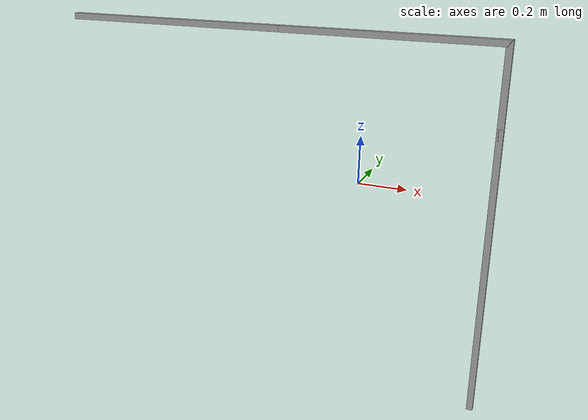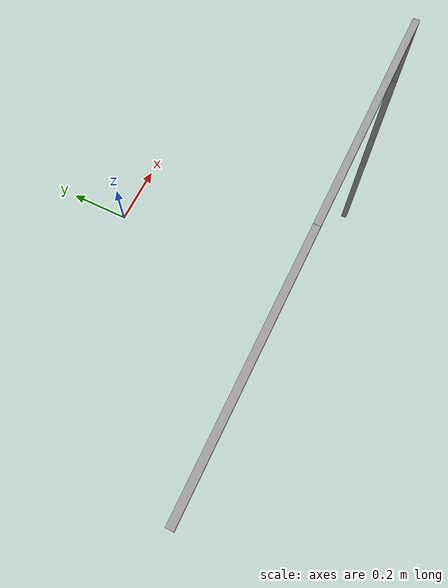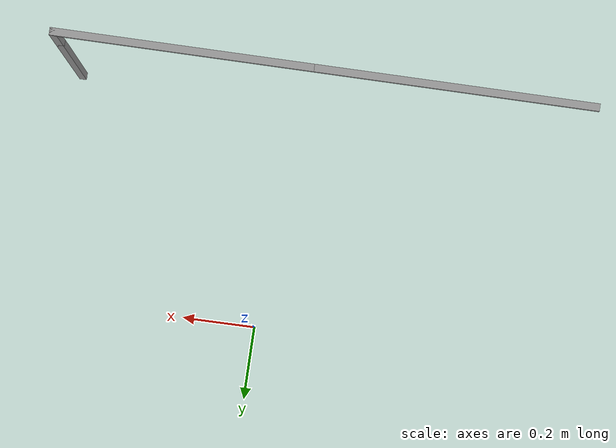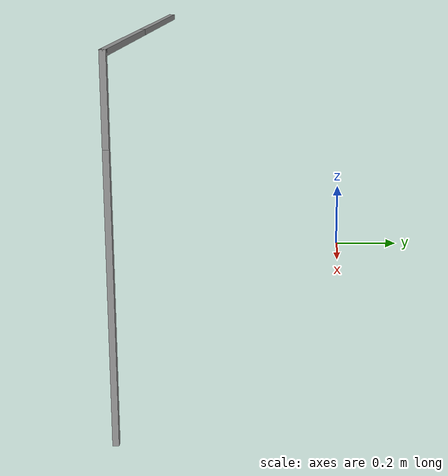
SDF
<?xml version='1.0'?>
<sdf version='1.6'>
  <model name='leg'>
    <link name='link_4'>
      <pose frame=''>-0.449396 -0.66895 0.71241 0 -0 0</pose>
      <inertial>
        <mass>1</mass>
        <inertia>
          <ixx>0.166667</ixx>
          <ixy>0</ixy>
          <ixz>0</ixz>
          <iyy>0.166667</iyy>
          <iyz>0</iyz>
          <izz>0.166667</izz>
        </inertia>
        <pose frame=''>0 0 0 0 -0 0</pose>
      </inertial>
      <gravity>1</gravity>
      <self_collide>0</self_collide>
      <kinematic>0</kinematic>
      <visual name='visual'>
        <pose frame=''>0 0 0 0 -0 0</pose>
        <geometry>
          <box>
            <size>0.745385 0.02 0.02</size>
          </box>
        </geometry>
        <material>
          <lighting>1</lighting>
          <script>
            <uri>file://media/materials/scripts/gazebo.material</uri>
            <name>Gazebo/Grey</name>
          </script>
          <ambient>0.3 0.3 0.3 1</ambient>
          <diffuse>0.7 0.7 0.7 1</diffuse>
          <specular>0.01 0.01 0.01 1</specular>
          <emissive>0 0 0 1</emissive>
          <shader type='vertex'>
            <normal_map>__default__</normal_map>
          </shader>
        </material>
        <cast_shadows>1</cast_shadows>
        <transparency>0</transparency>
      </visual>
      <collision name='collision'>
        <laser_retro>0</laser_retro>
        <max_contacts>10</max_contacts>
        <pose frame=''>0 0 0 0 -0 0</pose>
        <geometry>
          <box>
            <size>0.745385 0.02 0.02</size>
          </box>
        </geometry>
        <surface>
          <friction>
            <ode>
              <mu>1</mu>
              <mu2>1</mu2>
              <fdir1>0 0 0</fdir1>
              <slip1>0</slip1>
              <slip2>0</slip2>
            </ode>
            <torsional>
              <coefficient>1</coefficient>
              <patch_radius>0</patch_radius>
              <surface_radius>0</surface_radius>
              <use_patch_radius>1</use_patch_radius>
              <ode>
                <slip>0</slip>
              </ode>
            </torsional>
          </friction>
          <bounce>
            <restitution_coefficient>0</restitution_coefficient>
            <threshold>1e+06</threshold>
          </bounce>
          <contact>
            <collide_without_contact>0</collide_without_contact>
            <collide_without_contact_bitmask>1</collide_without_contact_bitmask>
            <collide_bitmask>1</collide_bitmask>
            <ode>
              <soft_cfm>0</soft_cfm>
              <soft_erp>0.2</soft_erp>
              <kp>1e+13</kp>
              <kd>1</kd>
              <max_vel>0.01</max_vel>
              <min_depth>0</min_depth>
            </ode>
            <bullet>
              <split_impulse>1</split_impulse>
              <split_impulse_penetration_threshold>-0.01</split_impulse_penetration_threshold>
              <soft_cfm>0</soft_cfm>
              <soft_erp>0.2</soft_erp>
              <kp>1e+13</kp>
              <kd>1</kd>
            </bullet>
          </contact>
        </surface>
      </collision>
    </link>
    <link name='link_6'>
      <pose frame=''>0.605154 -0.66895 0.579315 0 -0 0</pose>
      <inertial>
        <mass>1</mass>
        <inertia>
          <ixx>0.166667</ixx>
          <ixy>0</ixy>
          <ixz>0</ixz>
          <iyy>0.166667</iyy>
          <iyz>0</iyz>
          <izz>0.166667</izz>
        </inertia>
        <pose frame=''>0 0 0 0 -0 0</pose>
      </inertial>
      <gravity>1</gravity>
      <self_collide>0</self_collide>
      <kinematic>0</kinematic>
      <visual name='visual'>
        <pose frame=''>0 0 0 0 -0 0</pose>
        <geometry>
          <box>
            <size>0.02 0.02 0.28619</size>
          </box>
        </geometry>
        <material>
          <lighting>1</lighting>
          <script>
            <uri>file://media/materials/scripts/gazebo.material</uri>
            <name>Gazebo/Grey</name>
          </script>
          <ambient>0.3 0.3 0.3 1</ambient>
          <diffuse>0.7 0.7 0.7 1</diffuse>
          <specular>0.01 0.01 0.01 1</specular>
          <emissive>0 0 0 1</emissive>
          <shader type='vertex'>
            <normal_map>__default__</normal_map>
          </shader>
        </material>
        <cast_shadows>1</cast_shadows>
        <transparency>0</transparency>
      </visual>
      <collision name='collision'>
        <laser_retro>0</laser_retro>
        <max_contacts>10</max_contacts>
        <pose frame=''>0 0 0 0 -0 0</pose>
        <geometry>
          <box>
            <size>0.02 0.02 0.28619</size>
          </box>
        </geometry>
        <surface>
          <friction>
            <ode>
              <mu>1</mu>
              <mu2>1</mu2>
              <fdir1>0 0 0</fdir1>
              <slip1>0</slip1>
              <slip2>0</slip2>
            </ode>
            <torsional>
              <coefficient>1</coefficient>
              <patch_radius>0</patch_radius>
              <surface_radius>0</surface_radius>
              <use_patch_radius>1</use_patch_radius>
              <ode>
                <slip>0</slip>
              </ode>
            </torsional>
          </friction>
          <bounce>
            <restitution_coefficient>0</restitution_coefficient>
            <threshold>1e+06</threshold>
          </bounce>
          <contact>
            <collide_without_contact>0</collide_without_contact>
            <collide_without_contact_bitmask>1</collide_without_contact_bitmask>
            <collide_bitmask>1</collide_bitmask>
            <ode>
              <soft_cfm>0</soft_cfm>
              <soft_erp>0.2</soft_erp>
              <kp>1e+13</kp>
              <kd>1</kd>
              <max_vel>0.01</max_vel>
              <min_depth>0</min_depth>
            </ode>
            <bullet>
              <split_impulse>1</split_impulse>
              <split_impulse_penetration_threshold>-0.01</split_impulse_penetration_threshold>
              <soft_cfm>0</soft_cfm>
              <soft_erp>0.2</soft_erp>
              <kp>1e+13</kp>
              <kd>1</kd>
            </bullet>
          </contact>
        </surface>
      </collision>
    </link>
    <link name='link_7'>
      <pose frame=''>0.269204 -0.66895 0.71241 0 -0 0</pose>
      <inertial>
        <mass>1</mass>
        <inertia>
          <ixx>0.166667</ixx>
          <ixy>0</ixy>
          <ixz>0</ixz>
          <iyy>0.166667</iyy>
          <iyz>0</iyz>
          <izz>0.166667</izz>
        </inertia>
        <pose frame=''>0 0 0 0 -0 0</pose>
      </inertial>
      <gravity>1</gravity>
      <self_collide>0</self_collide>
      <kinematic>0</kinematic>
      <visual name='visual'>
        <pose frame=''>0 0 0 0 -0 0</pose>
        <geometry>
          <box>
            <size>0.6919 0.02 0.02</size>
          </box>
        </geometry>
        <material>
          <lighting>1</lighting>
          <script>
            <uri>file://media/materials/scripts/gazebo.material</uri>
            <name>Gazebo/Grey</name>
          </script>
          <ambient>0.3 0.3 0.3 1</ambient>
          <diffuse>0.7 0.7 0.7 1</diffuse>
          <specular>0.01 0.01 0.01 1</specular>
          <emissive>0 0 0 1</emissive>
          <shader type='vertex'>
            <normal_map>__default__</normal_map>
          </shader>
        </material>
        <cast_shadows>1</cast_shadows>
        <transparency>0</transparency>
      </visual>
      <collision name='collision'>
        <laser_retro>0</laser_retro>
        <max_contacts>10</max_contacts>
        <pose frame=''>0 0 0 0 -0 0</pose>
        <geometry>
          <box>
            <size>0.6919 0.02 0.02</size>
          </box>
        </geometry>
        <surface>
          <friction>
            <ode>
              <mu>1</mu>
              <mu2>1</mu2>
              <fdir1>0 0 0</fdir1>
              <slip1>0</slip1>
              <slip2>0</slip2>
            </ode>
            <torsional>
              <coefficient>1</coefficient>
              <patch_radius>0</patch_radius>
              <surface_radius>0</surface_radius>
              <use_patch_radius>1</use_patch_radius>
              <ode>
                <slip>0</slip>
              </ode>
            </torsional>
          </friction>
          <bounce>
            <restitution_coefficient>0</restitution_coefficient>
            <threshold>1e+06</threshold>
          </bounce>
          <contact>
            <collide_without_contact>0</collide_without_contact>
            <collide_without_contact_bitmask>1</collide_without_contact_bitmask>
            <collide_bitmask>1</collide_bitmask>
            <ode>
              <soft_cfm>0</soft_cfm>
              <soft_erp>0.2</soft_erp>
              <kp>1e+13</kp>
              <kd>1</kd>
              <max_vel>0.01</max_vel>
              <min_depth>0</min_depth>
            </ode>
            <bullet>
              <split_impulse>1</split_impulse>
              <split_impulse_penetration_threshold>-0.01</split_impulse_penetration_threshold>
              <soft_cfm>0</soft_cfm>
              <soft_erp>0.2</soft_erp>
              <kp>1e+13</kp>
              <kd>1</kd>
            </bullet>
          </contact>
        </surface>
      </collision>
    </link>
    <link name='link_8'>
      <pose frame=''>0.605154 -0.66895 -0.004135 0 -0 0</pose>
      <inertial>
        <mass>1</mass>
        <inertia>
          <ixx>0.166667</ixx>
          <ixy>0</ixy>
          <ixz>0</ixz>
          <iyy>0.166667</iyy>
          <iyz>0</iyz>
          <izz>0.166667</izz>
        </inertia>
        <pose frame=''>0 0 0 0 -0 0</pose>
      </inertial>
      <gravity>1</gravity>
      <self_collide>0</self_collide>
      <kinematic>0</kinematic>
      <visual name='visual'>
        <pose frame=''>0 0 0 0 -0 0</pose>
        <geometry>
          <box>
            <size>0.02 0.02 0.95</size>
          </box>
        </geometry>
        <material>
          <lighting>1</lighting>
          <script>
            <uri>file://media/materials/scripts/gazebo.material</uri>
            <name>Gazebo/Grey</name>
          </script>
          <ambient>0.3 0.3 0.3 1</ambient>
          <diffuse>0.7 0.7 0.7 1</diffuse>
          <specular>0.01 0.01 0.01 1</specular>
          <emissive>0 0 0 1</emissive>
          <shader type='vertex'>
            <normal_map>__default__</normal_map>
          </shader>
        </material>
        <cast_shadows>1</cast_shadows>
        <transparency>0</transparency>
      </visual>
      <collision name='collision'>
        <laser_retro>0</laser_retro>
        <max_contacts>10</max_contacts>
        <pose frame=''>0 0 0 0 -0 0</pose>
        <geometry>
          <box>
            <size>0.02 0.02 0.95</size>
          </box>
        </geometry>
        <surface>
          <friction>
            <ode>
              <mu>1</mu>
              <mu2>1</mu2>
              <fdir1>0 0 0</fdir1>
              <slip1>0</slip1>
              <slip2>0</slip2>
            </ode>
            <torsional>
              <coefficient>1</coefficient>
              <patch_radius>0</patch_radius>
              <surface_radius>0</surface_radius>
              <use_patch_radius>1</use_patch_radius>
              <ode>
                <slip>0</slip>
              </ode>
            </torsional>
          </friction>
          <bounce>
            <restitution_coefficient>0</restitution_coefficient>
            <threshold>1e+06</threshold>
          </bounce>
          <contact>
            <collide_without_contact>0</collide_without_contact>
            <collide_without_contact_bitmask>1</collide_without_contact_bitmask>
            <collide_bitmask>1</collide_bitmask>
            <ode>
              <soft_cfm>0</soft_cfm>
              <soft_erp>0.2</soft_erp>
              <kp>1e+13</kp>
              <kd>1</kd>
              <max_vel>0.01</max_vel>
              <min_depth>0</min_depth>
            </ode>
            <bullet>
              <split_impulse>1</split_impulse>
              <split_impulse_penetration_threshold>-0.01</split_impulse_penetration_threshold>
              <soft_cfm>0</soft_cfm>
              <soft_erp>0.2</soft_erp>
              <kp>1e+13</kp>
              <kd>1</kd>
            </bullet>
          </contact>
        </surface>
      </collision>
    </link>
    <joint name='link_4_JOINT_3' type='revolute'>
      <parent>link_4</parent>
      <child>link_7</child>
      <pose frame=''>-0.3726 -0 0 0 -0 0</pose>
      <axis>
        <xyz>0 1 0</xyz>
        <use_parent_model_frame>0</use_parent_model_frame>
        <limit>
          <lower>-1.79769e+308</lower>
          <upper>1.79769e+308</upper>
          <effort>-1</effort>
          <velocity>-1</velocity>
        </limit>
        <dynamics>
          <spring_reference>0</spring_reference>
          <spring_stiffness>0</spring_stiffness>
          <damping>0</damping>
        </dynamics>
      </axis>
      <physics>
        <ode>
          <limit>
            <cfm>0</cfm>
            <erp>0.2</erp>
          </limit>
          <suspension>
            <cfm>0</cfm>
            <erp>0.2</erp>
          </suspension>
        </ode>
      </physics>
    </joint>
    <joint name='link_6_JOINT_6' type='revolute'>
      <parent>link_6</parent>
      <child>link_8</child>
      <pose frame=''>0 0 0.46595 0 -0 0</pose>
      <axis>
        <xyz>0 1 0</xyz>
        <use_parent_model_frame>0</use_parent_model_frame>
        <limit>
          <lower>-1.79769e+308</lower>
          <upper>1.79769e+308</upper>
          <effort>-1</effort>
          <velocity>-1</velocity>
        </limit>
        <dynamics>
          <spring_reference>0</spring_reference>
          <spring_stiffness>0</spring_stiffness>
          <damping>0</damping>
        </dynamics>
      </axis>
      <physics>
        <ode>
          <limit>
            <cfm>0</cfm>
            <erp>0.2</erp>
          </limit>
          <suspension>
            <cfm>0</cfm>
            <erp>0.2</erp>
          </suspension>
        </ode>
      </physics>
    </joint>
    <joint name='link_7_JOINT_5' type='fixed'>
      <parent>link_7</parent>
      <child>link_6</child>
      <pose frame=''>0 0 0 0 -0 0</pose>
      <physics>
        <ode>
          <limit>
            <cfm>0</cfm>
            <erp>0.2</erp>
          </limit>
          <suspension>
            <cfm>0</cfm>
            <erp>0.2</erp>
          </suspension>
        </ode>
      </physics>
    </joint>
    <static>0</static>
    <allow_auto_disable>1</allow_auto_disable>
  </model>
</sdf>
